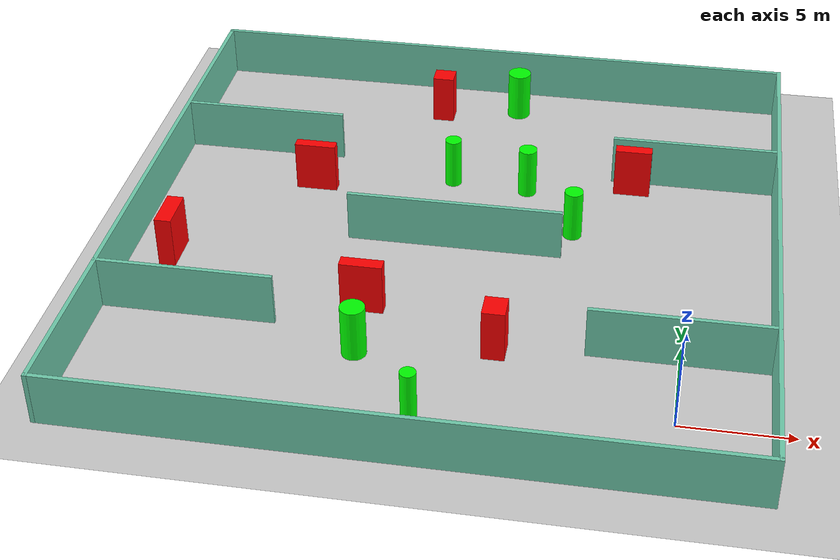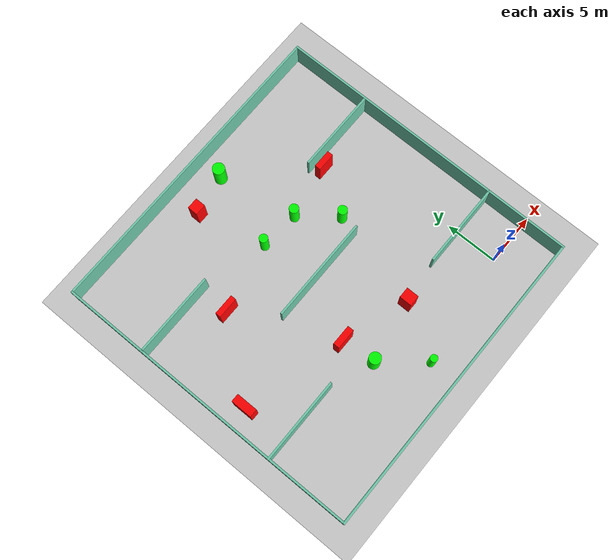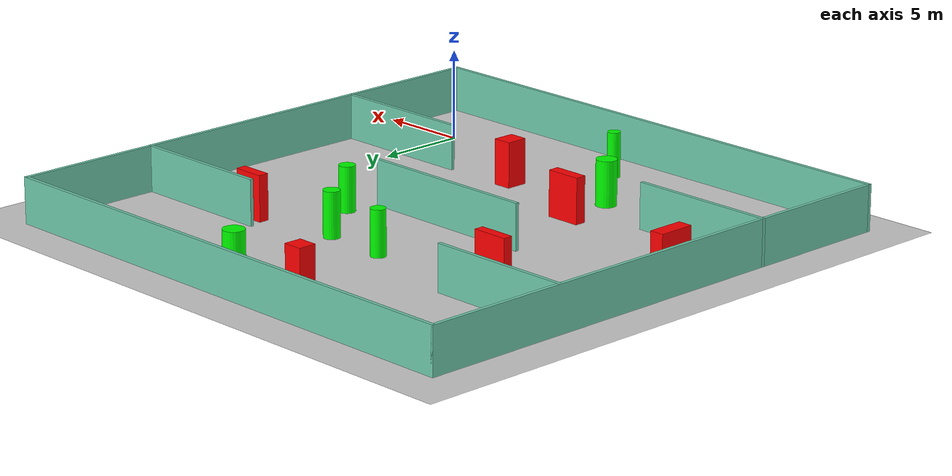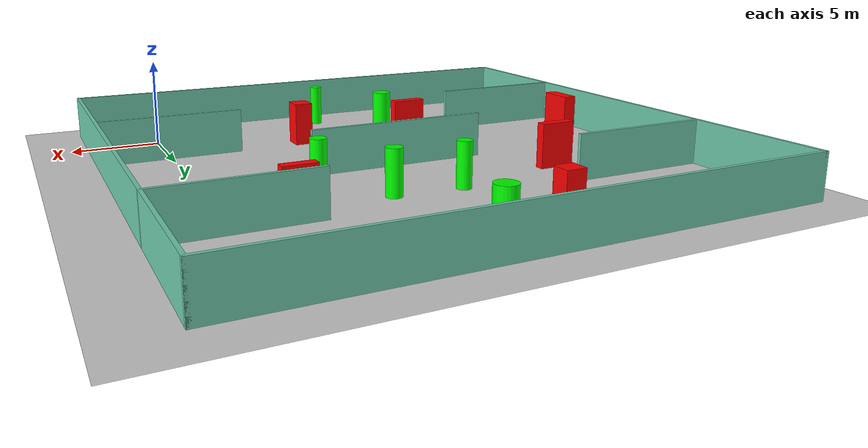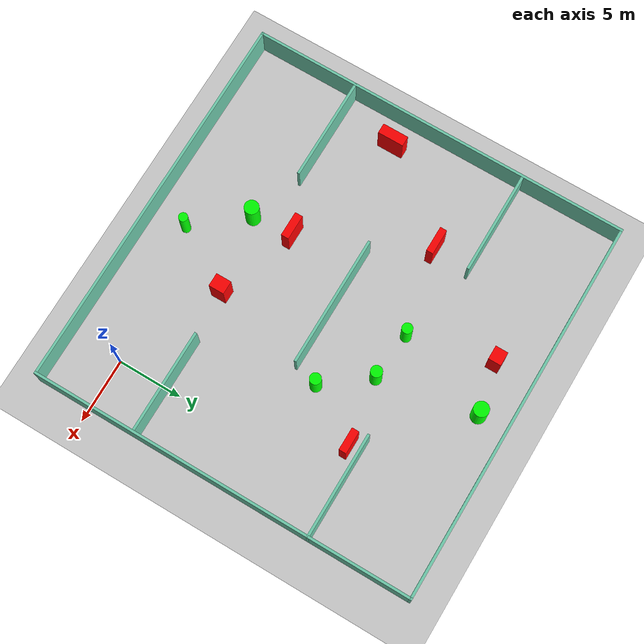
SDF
<sdf version="1.7">
 <world name="default">
  <light name="sun" type="directional">
   <pose>0 0 10 0 -0 0</pose>
   <diffuse>0.8 0.8 0.8 1</diffuse>
   <specular>0.2 0.2 0.2 1</specular>
   <attenuation>
    <range>1000</range>
    <constant>0.9</constant>
    <linear>0.01</linear>
    <quadratic>0.001</quadratic>
   </attenuation>
   <direction>-0.5 0.1 -0.9</direction>
   <spot><inner_angle>0</inner_angle><outer_angle>0</outer_angle><falloff>0</falloff></spot>
  </light>
  <model name="ground_plane">
   <static>1</static>
   <link name="link">
    <collision name="collision">
     <geometry><plane><normal>0 0 1</normal><size>100 100</size></plane></geometry>
     <surface>
      <contact><collide_bitmask>65535</collide_bitmask></contact>
      <friction><ode><mu>100</mu><mu2>50</mu2></ode></friction>
     </surface>
    </collision>
    <visual name="visual">
     <cast_shadows>0</cast_shadows>
     <geometry><plane><normal>0 0 1</normal><size>100 100</size></plane></geometry>
     <material>
      <script><uri>file://media/materials/scripts/gazebo.material</uri><name>Gazebo/Grey</name></script>
     </material>
    </visual>
   </link>
  </model>
  <gravity>0 0 -9.8</gravity>
  <magnetic_field>6e-06 2.3e-05 -4.2e-05</magnetic_field>
  <atmosphere type="adiabatic"/>
  <physics type="ode">
   <max_step_size>0.001</max_step_size>
   <real_time_factor>1</real_time_factor>
   <real_time_update_rate>1000</real_time_update_rate>
  </physics>
  <scene><ambient>0.4 0.4 0.4 1</ambient><background>0.7 0.7 0.7 1</background><shadows>1</shadows></scene>
  <spherical_coordinates>
   <surface_model>EARTH_WGS84</surface_model>
   <latitude_deg>0</latitude_deg>
   <longitude_deg>0</longitude_deg>
   <elevation>0</elevation>
   <heading_deg>0</heading_deg>
  </spherical_coordinates>
  <model name="my_base_walls">
   <link name="Wall_10">
    <collision name="Wall_10_Collision">
     <geometry><box><size>8.2 0.2 2.5</size></box></geometry>
     <pose>0 0 1.25 0 -0 0</pose>
    </collision>
    <visual name="Wall_10_Visual">
     <pose>0 0 1.25 0 -0 0</pose>
     <geometry><box><size>8.2 0.2 2.5</size></box></geometry>
     <material>
      <script><uri>file://media/materials/scripts/gazebo.material</uri><name>Gazebo/Grey</name></script>
      <ambient>0.435294 0.796078 0.67451 1</ambient>
     </material>
     <meta><layer>0</layer></meta>
    </visual>
    <pose>-11 -7 0 0 -0 0</pose>
   </link>
   <link name="Wall_12">
    <collision name="Wall_12_Collision">
     <geometry><box><size>8.2 0.2 2.5</size></box></geometry>
     <pose>0 0 1.25 0 -0 0</pose>
    </collision>
    <visual name="Wall_12_Visual">
     <pose>0 0 1.25 0 -0 0</pose>
     <geometry><box><size>8.2 0.2 2.5</size></box></geometry>
     <material>
      <script><uri>file://media/materials/scripts/gazebo.material</uri><name>Gazebo/Grey</name></script>
      <ambient>0.435294 0.796078 0.67451 1</ambient>
     </material>
     <meta><layer>0</layer></meta>
    </visual>
    <pose>-11 7 0 0 -0 0</pose>
   </link>
   <link name="Wall_14">
    <collision name="Wall_14_Collision">
     <geometry><box><size>8.2 0.2 2.5</size></box></geometry>
     <pose>0 0 1.25 0 -0 0</pose>
    </collision>
    <visual name="Wall_14_Visual">
     <pose>0 0 1.25 0 -0 0</pose>
     <geometry><box><size>8.2 0.2 2.5</size></box></geometry>
     <material>
      <script><uri>file://media/materials/scripts/gazebo.material</uri><name>Gazebo/Grey</name></script>
      <ambient>0.435294 0.796078 0.67451 1</ambient>
     </material>
     <meta><layer>0</layer></meta>
    </visual>
    <pose>11 7 0 0 -0 3.14159</pose>
   </link>
   <link name="Wall_16">
    <collision name="Wall_16_Collision">
     <geometry><box><size>10.2 0.2 2.5</size></box></geometry>
     <pose>0 0 1.25 0 -0 0</pose>
    </collision>
    <visual name="Wall_16_Visual">
     <pose>0 0 1.25 0 -0 0</pose>
     <geometry><box><size>10.2 0.2 2.5</size></box></geometry>
     <material>
      <script><uri>file://media/materials/scripts/gazebo.material</uri><name>Gazebo/Grey</name></script>
      <ambient>0.435294 0.796078 0.67451 1</ambient>
     </material>
     <meta><layer>0</layer></meta>
    </visual>
    <pose>0 0 0 0 -0 3.14159</pose>
   </link>
   <link name="Wall_2">
    <collision name="Wall_2_Collision">
     <geometry><box><size>30.2 0.2 2.5</size></box></geometry>
     <pose>0 0 1.25 0 -0 0</pose>
    </collision>
    <visual name="Wall_2_Visual">
     <pose>0 0 1.25 0 -0 0</pose>
     <geometry><box><size>30.2 0.2 2.5</size></box></geometry>
     <material>
      <script><uri>file://media/materials/scripts/gazebo.material</uri><name>Gazebo/Grey</name></script>
      <ambient>0.435294 0.796078 0.67451 1</ambient>
     </material>
     <meta><layer>0</layer></meta>
    </visual>
    <pose>0 -15 0 0 -0 3.14159</pose>
   </link>
   <link name="Wall_3">
    <collision name="Wall_3_Collision">
     <geometry><box><size>30.2 0.2 2.5</size></box></geometry>
     <pose>0 0 1.25 0 -0 0</pose>
    </collision>
    <visual name="Wall_3_Visual">
     <pose>0 0 1.25 0 -0 0</pose>
     <geometry><box><size>30.2 0.2 2.5</size></box></geometry>
     <material>
      <script><uri>file://media/materials/scripts/gazebo.material</uri><name>Gazebo/Grey</name></script>
      <ambient>0.435294 0.796078 0.67451 1</ambient>
     </material>
     <meta><layer>0</layer></meta>
    </visual>
    <pose>-15 0 0 0 -0 1.5708</pose>
   </link>
   <link name="Wall_4">
    <collision name="Wall_4_Collision">
     <geometry><box><size>30.2 0.2 2.5</size></box></geometry>
     <pose>0 0 1.25 0 -0 0</pose>
    </collision>
    <visual name="Wall_4_Visual">
     <pose>0 0 1.25 0 -0 0</pose>
     <geometry><box><size>30.2 0.2 2.5</size></box></geometry>
     <material>
      <script><uri>file://media/materials/scripts/gazebo.material</uri><name>Gazebo/Grey</name></script>
      <ambient>0.435294 0.796078 0.67451 1</ambient>
     </material>
     <meta><layer>0</layer></meta>
    </visual>
    <pose>0 15 0 0 -0 0</pose>
   </link>
   <link name="Wall_6">
    <collision name="Wall_6_Collision">
     <geometry><box><size>30.2 0.2 2.5</size></box></geometry>
     <pose>0 0 1.25 0 -0 0</pose>
    </collision>
    <visual name="Wall_6_Visual">
     <pose>0 0 1.25 0 -0 0</pose>
     <geometry><box><size>30.2 0.2 2.5</size></box></geometry>
     <material>
      <script><uri>file://media/materials/scripts/gazebo.material</uri><name>Gazebo/Grey</name></script>
      <ambient>0.435294 0.796078 0.67451 1</ambient>
     </material>
     <meta><layer>0</layer></meta>
    </visual>
    <pose>15 0 0 0 -0 1.5708</pose>
   </link>
   <link name="Wall_8">
    <collision name="Wall_8_Collision">
     <geometry><box><size>8.2 0.2 2.5</size></box></geometry>
     <pose>0 0 1.25 0 -0 0</pose>
    </collision>
    <visual name="Wall_8_Visual">
     <pose>0 0 1.25 0 -0 0</pose>
     <geometry><box><size>8.2 0.2 2.5</size></box></geometry>
     <material>
      <script><uri>file://media/materials/scripts/gazebo.material</uri><name>Gazebo/Grey</name></script>
      <ambient>0.435294 0.796078 0.67451 1</ambient>
     </material>
     <meta><layer>0</layer></meta>
    </visual>
    <pose>11 -7 0 0 -0 3.14159</pose>
   </link>
   <static>1</static>
   <pose>-11 11 0 0 -0 0</pose>
  </model>
  <model name="cylinder1">
   <static>1</static>
   <link name="link">
    <inertial>
     <mass>1</mass>
     <inertia><ixx>0.5</ixx><ixy>0</ixy><ixz>0</ixz><iyy>0.5</iyy><iyz>0</iyz><izz>1</izz></inertia>
    </inertial>
    <collision name="collision">
     <geometry><cylinder><radius>0.45016281115711787</radius><length>2.5</length></cylinder></geometry>
    </collision>
    <visual name="visual">
     <geometry><cylinder><radius>0.45016281115711787</radius><length>2.5</length></cylinder></geometry>
     <material>
      <ambient>0 1 0 1</ambient>
      <diffuse>0 1 0 1</diffuse>
      <specular>0.1 0.1 0.1 1</specular>
      <emissive>0 0 0 0</emissive>
     </material>
    </visual>
   </link>
   <pose>-8.171276005959214 16.22274548110691 1.25 0 0 0</pose>
  </model>
  <model name="cylinder2">
   <static>1</static>
   <link name="link">
    <inertial>
     <mass>1</mass>
     <inertia><ixx>0.5</ixx><ixy>0</ixy><ixz>0</ixz><iyy>0.5</iyy><iyz>0</iyz><izz>1</izz></inertia>
    </inertial>
    <collision name="collision">
     <geometry><cylinder><radius>0.4080499933821506</radius><length>2.5</length></cylinder></geometry>
    </collision>
    <visual name="visual">
     <geometry><cylinder><radius>0.4080499933821506</radius><length>2.5</length></cylinder></geometry>
     <material>
      <ambient>0 1 0 1</ambient>
      <diffuse>0 1 0 1</diffuse>
      <specular>0.1 0.1 0.1 1</specular>
      <emissive>0 0 0 0</emissive>
     </material>
    </visual>
   </link>
   <pose>-11.939196679991666 16.508382416839652 1.25 0 0 0</pose>
  </model>
  <model name="cylinder3">
   <static>1</static>
   <link name="link">
    <inertial>
     <mass>1</mass>
     <inertia><ixx>0.5</ixx><ixy>0</ixy><ixz>0</ixz><iyy>0.5</iyy><iyz>0</iyz><izz>1</izz></inertia>
    </inertial>
    <collision name="collision">
     <geometry><cylinder><radius>0.3525524627184727</radius><length>2.5</length></cylinder></geometry>
    </collision>
    <visual name="visual">
     <geometry><cylinder><radius>0.3525524627184727</radius><length>2.5</length></cylinder></geometry>
     <material>
      <ambient>0 1 0 1</ambient>
      <diffuse>0 1 0 1</diffuse>
      <specular>0.1 0.1 0.1 1</specular>
      <emissive>0 0 0 0</emissive>
     </material>
    </visual>
   </link>
   <pose>-10.84286175996116 -1.339468125378482 1.25 0 0 0</pose>
  </model>
  <model name="cylinder4">
   <static>1</static>
   <link name="link">
    <inertial>
     <mass>1</mass>
     <inertia><ixx>0.5</ixx><ixy>0</ixy><ixz>0</ixz><iyy>0.5</iyy><iyz>0</iyz><izz>1</izz></inertia>
    </inertial>
    <collision name="collision">
     <geometry><cylinder><radius>0.44411265512957465</radius><length>2.5</length></cylinder></geometry>
    </collision>
    <visual name="visual">
     <geometry><cylinder><radius>0.44411265512957465</radius><length>2.5</length></cylinder></geometry>
     <material>
      <ambient>0 1 0 1</ambient>
      <diffuse>0 1 0 1</diffuse>
      <specular>0.1 0.1 0.1 1</specular>
      <emissive>0 0 0 0</emissive>
     </material>
    </visual>
   </link>
   <pose>-5.562126069420877 12.851227125392752 1.25 0 0 0</pose>
  </model>
  <model name="cylinder5">
   <static>1</static>
   <link name="link">
    <inertial>
     <mass>1</mass>
     <inertia><ixx>0.5</ixx><ixy>0</ixy><ixz>0</ixz><iyy>0.5</iyy><iyz>0</iyz><izz>1</izz></inertia>
    </inertial>
    <collision name="collision">
     <geometry><cylinder><radius>0.5609029284010181</radius><length>2.5</length></cylinder></geometry>
    </collision>
    <visual name="visual">
     <geometry><cylinder><radius>0.5609029284010181</radius><length>2.5</length></cylinder></geometry>
     <material>
      <ambient>0 1 0 1</ambient>
      <diffuse>0 1 0 1</diffuse>
      <specular>0.1 0.1 0.1 1</specular>
      <emissive>0 0 0 0</emissive>
     </material>
    </visual>
   </link>
   <pose>-13.97714508316437 2.4728474839994927 1.25 0 0 0</pose>
  </model>
  <model name="cylinder6">
   <static>1</static>
   <link name="link">
    <inertial>
     <mass>1</mass>
     <inertia><ixx>0.5</ixx><ixy>0</ixy><ixz>0</ixz><iyy>0.5</iyy><iyz>0</iyz><izz>1</izz></inertia>
    </inertial>
    <collision name="collision">
     <geometry><cylinder><radius>0.5818838118026203</radius><length>2.5</length></cylinder></geometry>
    </collision>
    <visual name="visual">
     <geometry><cylinder><radius>0.5818838118026203</radius><length>2.5</length></cylinder></geometry>
     <material>
      <ambient>0 1 0 1</ambient>
      <diffuse>0 1 0 1</diffuse>
      <specular>0.1 0.1 0.1 1</specular>
      <emissive>0 0 0 0</emissive>
     </material>
    </visual>
   </link>
   <pose>-9.571092728285077 23.75734348846397 1.25 0 0 0</pose>
  </model>
  <model name="box1">
   <static>1</static>
   <link name="link">
    <inertial>
     <mass>1</mass>
     <inertia><ixx>0.083</ixx><ixy>0</ixy><ixz>0</ixz><iyy>0.083</iyy><iyz>0</iyz><izz>0.083</izz></inertia>
    </inertial>
    <collision name="collision">
     <geometry><box><size>1.9589149114628037 0.6036668044121111 2.5</size></box></geometry>
    </collision>
    <visual name="visual">
     <geometry><box><size>1.9589149114628037 0.6036668044121111 2.5</size></box></geometry>
     <material>
      <ambient>1 0 0 1</ambient>
      <diffuse>1 0 0 1</diffuse>
      <specular>0.1 0.1 0.1 1</specular>
      <emissive>0 0 0 0</emissive>
     </material>
    </visual>
    <sensor name="my_contact" type="contact">
     <contact><collision>box_collision</collision><topic>__default_topic__</topic></contact>
    </sensor>
   </link>
   <pose>-14.270253567392343 5.656805176466978 1.25 0 0 0</pose>
  </model>
  <model name="box2">
   <static>1</static>
   <link name="link">
    <inertial>
     <mass>1</mass>
     <inertia><ixx>0.083</ixx><ixy>0</ixy><ixz>0</ixz><iyy>0.083</iyy><iyz>0</iyz><izz>0.083</izz></inertia>
    </inertial>
    <collision name="collision">
     <geometry><box><size>1.7707733003617836 0.572154224809396 2.5</size></box></geometry>
    </collision>
    <visual name="visual">
     <geometry><box><size>1.7707733003617836 0.572154224809396 2.5</size></box></geometry>
     <material>
      <ambient>1 0 0 1</ambient>
      <diffuse>1 0 0 1</diffuse>
      <specular>0.1 0.1 0.1 1</specular>
      <emissive>0 0 0 0</emissive>
     </material>
    </visual>
    <sensor name="my_contact" type="contact">
     <contact><collision>box_collision</collision><topic>__default_topic__</topic></contact>
    </sensor>
   </link>
   <pose>-3.0259430907064484 17.0544195953476 1.25 0 0 0</pose>
  </model>
  <model name="box3">
   <static>1</static>
   <link name="link">
    <inertial>
     <mass>1</mass>
     <inertia><ixx>0.083</ixx><ixy>0</ixy><ixz>0</ixz><iyy>0.083</iyy><iyz>0</iyz><izz>0.083</izz></inertia>
    </inertial>
    <collision name="collision">
     <geometry><box><size>0.7896589494034474 2.0381342580126187 2.5</size></box></geometry>
    </collision>
    <visual name="visual">
     <geometry><box><size>0.7896589494034474 2.0381342580126187 2.5</size></box></geometry>
     <material>
      <ambient>1 0 0 1</ambient>
      <diffuse>1 0 0 1</diffuse>
      <specular>0.1 0.1 0.1 1</specular>
      <emissive>0 0 0 0</emissive>
     </material>
    </visual>
    <sensor name="my_contact" type="contact">
     <contact><collision>box_collision</collision><topic>__default_topic__</topic></contact>
    </sensor>
   </link>
   <pose>-23.97687620596066 8.358697038972053 1.25 0 0 0</pose>
  </model>
  <model name="box4">
   <static>1</static>
   <link name="link">
    <inertial>
     <mass>1</mass>
     <inertia><ixx>0.083</ixx><ixy>0</ixy><ixz>0</ixz><iyy>0.083</iyy><iyz>0</iyz><izz>0.083</izz></inertia>
    </inertial>
    <collision name="collision">
     <geometry><box><size>2.0128346994216253 0.5276282868273872 2.5</size></box></geometry>
    </collision>
    <visual name="visual">
     <geometry><box><size>2.0128346994216253 0.5276282868273872 2.5</size></box></geometry>
     <material>
      <ambient>1 0 0 1</ambient>
      <diffuse>1 0 0 1</diffuse>
      <specular>0.1 0.1 0.1 1</specular>
      <emissive>0 0 0 0</emissive>
     </material>
    </visual>
    <sensor name="my_contact" type="contact">
     <contact><collision>box_collision</collision><topic>__default_topic__</topic></contact>
    </sensor>
   </link>
   <pose>-18.591624770734363 15.063435335133313 1.25 0 0 0</pose>
  </model>
  <model name="box5">
   <static>1</static>
   <link name="link">
    <inertial>
     <mass>1</mass>
     <inertia><ixx>0.083</ixx><ixy>0</ixy><ixz>0</ixz><iyy>0.083</iyy><iyz>0</iyz><izz>0.083</izz></inertia>
    </inertial>
    <collision name="collision">
     <geometry><box><size>1.0393392735786249 1.206996828897104 2.5</size></box></geometry>
    </collision>
    <visual name="visual">
     <geometry><box><size>1.0393392735786249 1.206996828897104 2.5</size></box></geometry>
     <material>
      <ambient>1 0 0 1</ambient>
      <diffuse>1 0 0 1</diffuse>
      <specular>0.1 0.1 0.1 1</specular>
      <emissive>0 0 0 0</emissive>
     </material>
    </visual>
    <sensor name="my_contact" type="contact">
     <contact><collision>box_collision</collision><topic>__default_topic__</topic></contact>
    </sensor>
   </link>
   <pose>-7.991533367040153 3.5493985994072563 1.25 0 0 0</pose>
  </model>
  <model name="box6">
   <static>1</static>
   <link name="link">
    <inertial>
     <mass>1</mass>
     <inertia><ixx>0.083</ixx><ixy>0</ixy><ixz>0</ixz><iyy>0.083</iyy><iyz>0</iyz><izz>0.083</izz></inertia>
    </inertial>
    <collision name="collision">
     <geometry><box><size>1.071162723464802 0.9860573481487025 2.5</size></box></geometry>
    </collision>
    <visual name="visual">
     <geometry><box><size>1.071162723464802 0.9860573481487025 2.5</size></box></geometry>
     <material>
      <ambient>1 0 0 1</ambient>
      <diffuse>1 0 0 1</diffuse>
      <specular>0.1 0.1 0.1 1</specular>
      <emissive>0 0 0 0</emissive>
     </material>
    </visual>
    <sensor name="my_contact" type="contact">
     <contact><collision>box_collision</collision><topic>__default_topic__</topic></contact>
    </sensor>
   </link>
   <pose>-13.467819452677295 22.91304759800073 1.25 0 0 0</pose>
  </model>
 </world>
</sdf>
